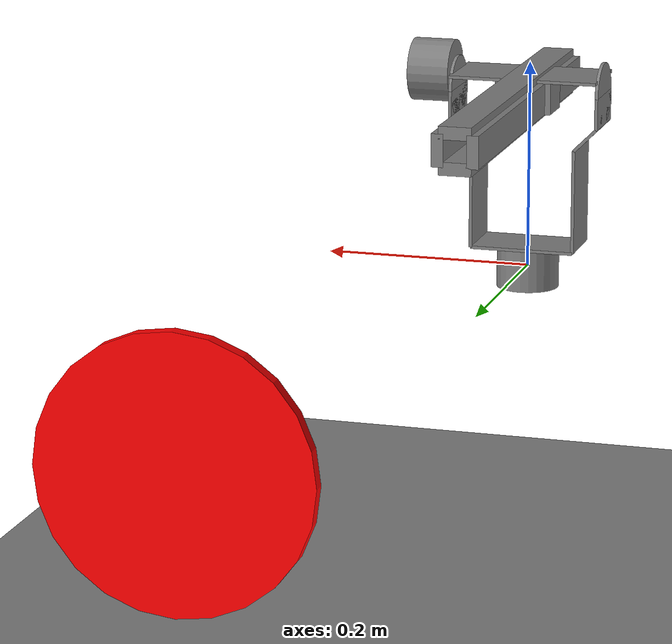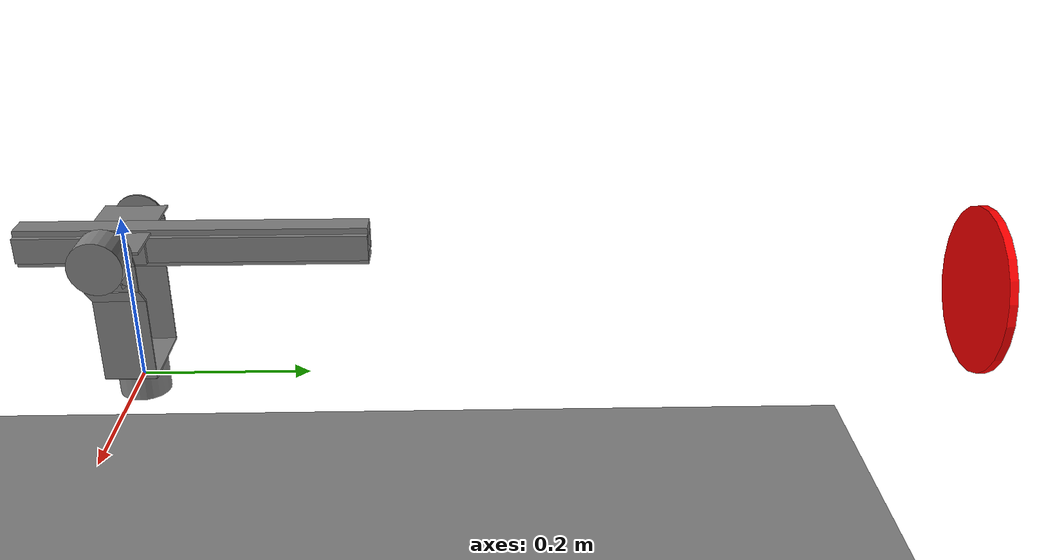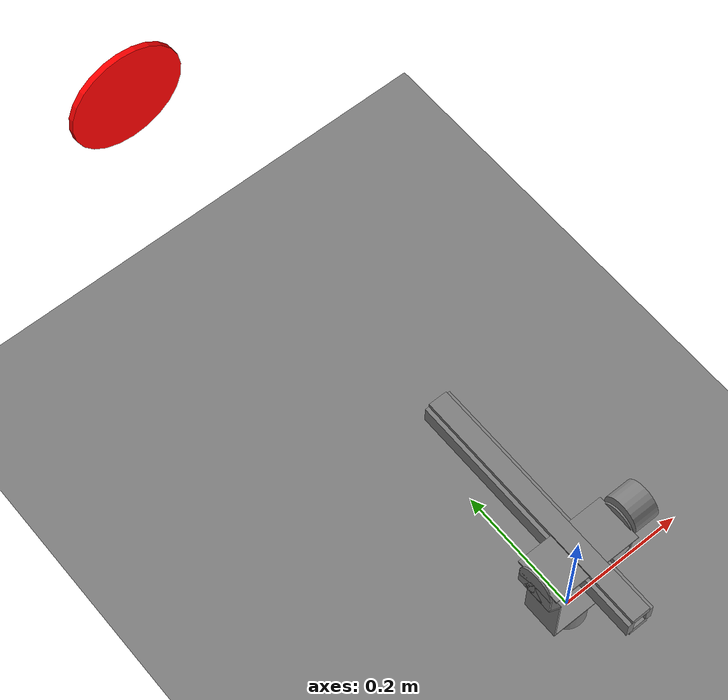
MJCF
<mujoco>

    <compiler coordinate="local" angle="degree" inertiafromgeom="auto"/>

    <option timestep="0.0005" apirate="100" wind="0 0 0" density="1.2" viscosity="0" cone="elliptic">
        <flag sensornoise="enable"/>
    </option>

    <worldbody>

        <light diffuse=".5 .5 .5" pos="0 0 3" dir="0 0 -1"/>
        <geom type="plane" pos="0 0 -0.325" size="1 1 0.1" contype="1" conaffinity="1"/>

        <body name="base" pos="0 0 0">
            <geom type="cylinder" condim="6" size="0.03 0.02" friction="1 0.005 0.0001"/>
            <body name="frame" pos="0 0 0.0215">
                <geom name="bottom" type="box" condim="3" size="0.05 0.03 0.0015" friction="1 0.005 0.0001"/>

                <body name="right" pos="0.05 0 0.05">
                    <geom name="rside" type="box" condim="3" size="0.0015 0.03 0.05" friction="1 0.005 0.0001"/>
                    <geom name="rtop_slope" type="box" condim="3" pos="0.0106 0 0.0606" size="0.0015 0.03 0.015" euler="0 45 0" friction="1 0.005 0.0001"/>

                    <body name="rtop_platform" pos="0.0212 0 0.0712">
                        <geom name="rstand" type="box" condim="3" pos="0 0 0.015" size="0.0015 0.03 0.015" friction="1 0.005 0.0001"/>
                        <geom name="rcircle" type="cylinder" condim="3" pos="0 0 0.03" size="0.03 0.0015" euler="0 90 0" friction="1 0.005 0.0001"/>

                        <body name="gun_platform" pos="0 0 0.045">
                            <geom type="cylinder" condim="3" pos="0.0227 0 0" size="0.03 0.02" euler="0 90 0" friction="1 0.005 0.0001"/>
                            <joint name="motor2" axis="1 0 0" limited="true" range="0 45" stiffness="0.01" frictionloss="0.01" damping=".06"/>

                            <body name="gun" pos="0 0 0">
                                <geom name="rotating_platform" type="box" condim="3" pos="-0.0712 -0.0015 0" size="0.0712 0.0370 0.0015" friction="1 0.005 0.0001"/>

                                <body name="rod" pos="-0.0712 0 0">
                                    <body name="bullet_holder" pos="0 0 0.0475">
                                        <body name="bullet_feeder" pos="0 -0.0670 -0.03">
                                            <body name="barrel" pos="0 0.0270 -0.0350">
                                                <geom name="bottom_barrel" type="box" condim="1" pos="0 0.120 -0.016" size="0.015 0.200 0.0060" friction="0 0 0"/>
                                                <geom name="top_barrel" type="box" condim="1" pos="0 0.1200 0.016" size="0.015 0.200 0.0060" friction="0 0 0"/>
                                                <geom name="right_barrel" type="box" condim="1" pos="0.0160 0.1200 0" size="0.0055 0.200 0.015" friction="0 0 0"/>
                                                <geom name="left_barrel" type="box" condim="1" pos="-0.0160 0.1200 0" size="0.0055 0.200 0.015" friction="0 0 0"/>

                                                <body name="shooting_mechanism" pos="0 0.0500 0">
                                                    <geom name="connector_right" type="box" condim="3" pos="0.0210 0 0" size="0.006 0.0200 0.015" friction="1 0.005 0.0001"/>
                                                    <geom name="connector_left" type="box" condim="3" pos="-0.0210 0 0" size="0.006 0.0200 0.015" friction="1 0.005 0.0001"/>
                                                </body>

                                                <body name="head_of_barrel" pos="0 0.12 0">
                                                </body>

                                                <body name="camera" pos="0 0.12 0.1">
                                                    <camera name="cam1" mode="fixed" euler="90 0 0" pos="0 0 0"/>
                                                </body>

                                            </body>
                                        </body>
                                    </body>
                                </body>
                            </body>
                        </body>
                    </body>
                </body>

                <body name="left" pos="-0.05 0 0.05">
                    <geom name="lside" type="box" condim="3" size="0.0015 0.03 0.05" friction="1 0.005 0.0001"/>
                    <geom name="ltop_slope" type="box" condim="3" pos="-0.0106 0 0.0606" size="0.0015 0.03 0.015" euler="0 -45 0" friction="1 0.005 0.0001"/>

                    <body name="ltop_platform" pos="-0.0212 0 0.0712">
                        <geom name="lstand" type="box" condim="3" pos="0 0 0.015" size="0.0015 0.03 0.015" friction="1 0.005 0.0001"/>
                        <geom name="lcircle" type="cylinder" condim="3" pos="0 0 0.03" size="0.03 0.0015" euler="0 90 0" friction="1 0.005 0.0001"/>
                    </body>
                </body>

                <joint name="motor1" axis="0 0 1" limited="true" range="-45 45" stiffness="0.01" frictionloss="0.01" damping=".06"/>
            </body>
        </body>

        <body name="bullet" pos="0 0 0">
            <geom type="sphere" size="0.009" mass="0.00008" contype="1" conaffinity="1"/>
            <joint type="slide" pos="0 0 0" axis="1 0 0"/>
            <joint type="slide" pos="0 0 0" axis="0 1 0"/>
            <joint type="slide" pos="0 0 0" axis="0 0 1"/>
        </body>

        <body name="target" pos="0 1 0.1">
            <site name="detection" rgba="1 0 0 1" type="cylinder" size="0.1 0.005" euler="90 0 0"/>
            <geom rgba="1 0 0 1" type="cylinder" size="0.1 0.005" euler="90 0 0" contype="1" conaffinity="1" mass="1"/>
            <joint name="target_slidez" type="slide" pos="0 0 0" axis="0 0 1" range="-10.3213 10.3" damping="1.0"/>
            <joint name="target_slidex" type="slide" pos="0 0 0" axis="1 0 0" range="-10.3213 10.3" damping="1.0"/>
        </body>

    </worldbody>

    <actuator>
        <velocity joint="motor1" gear="1" forcelimited="true" forcerange="-10 10" ctrllimited="true" ctrlrange="-20 20"/>
        <velocity joint="motor2" gear="1" forcelimited="true" forcerange="-10 10" ctrllimited="true" ctrlrange="-10 10"/>
    </actuator>

    <sensor>
        <jointpos name="motor1_encoder" joint="motor1" noise="0.001"/>
        <jointpos name="motor2_encoder" joint="motor2" noise="0.001"/>
        <touch name="bulletDetect" site="detection"/>
    </sensor>

</mujoco>
